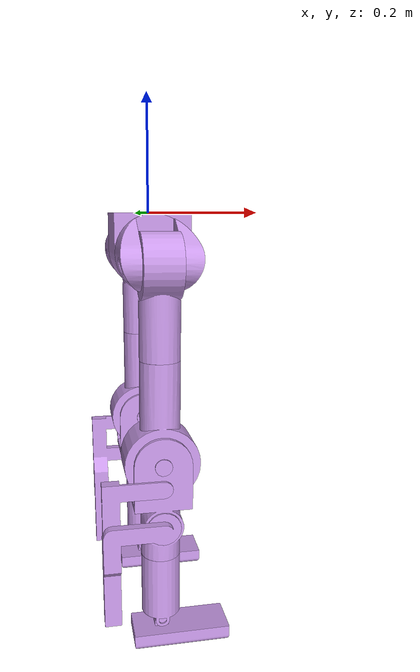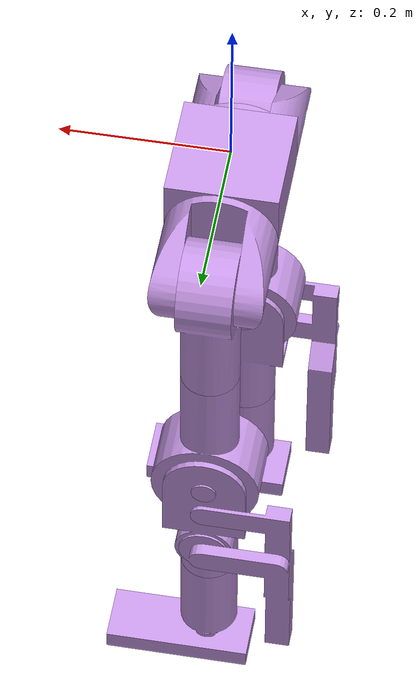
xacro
<?xml version="1.0" encoding="utf-8"?>
<robot
  name="growbot"
  xmlns:xacro="http://www.ros.org/wiki/xacro" >

<xacro:macro name="dummy_inertial">
  <inertial>
    <origin xyz="0 0 0" rpy="0 0 0"/>
    <mass value="1e-6"/>
    <inertia ixx="1e-9" ixy="0" ixz="0" iyy="1e-9" iyz="0" izz="1e-9"/>
  </inertial>
</xacro:macro>

<xacro:arg name="use_sim" default="true"/>
<xacro:arg name="ns" default=""/>
<xacro:property name="use_sim" value="$(arg use_sim)"/>
<xacro:property name="ns" value="$(arg ns)"/>

<!-- Shared joint interface list and ros2_control-->
<xacro:macro name="growbot_joint_interfaces">

  <joint name="HPR">
    <param name="motor_id">1</param>
    <command_interface name="position"/>
    <state_interface name="position"/>
    <state_interface name="velocity"/>
  </joint>
  <joint name="UTR">
    <param name="motor_id">2</param>
    <command_interface name="position"/>
    <state_interface name="position"/>
    <state_interface name="velocity"/>
  </joint>
  <joint name="LTR">
    <param name="motor_id">3</param>
    <command_interface name="position"/>
    <state_interface name="position"/>
    <state_interface name="velocity"/>
  </joint>
  <joint name="FR">
    <param name="motor_id">4</param>
    <command_interface name="position"/>
    <state_interface name="position"/>
    <state_interface name="velocity"/>
  </joint>
  <!-- Left leg -->
  <joint name="HPL">
    <param name="motor_id">5</param>
    <command_interface name="position"/>
    <state_interface name="position"/>
    <state_interface name="velocity"/>
  </joint>
  <joint name="UTL">
    <param name="motor_id">6</param>
    <command_interface name="position"/>
    <state_interface name="position"/>
    <state_interface name="velocity"/>
  </joint>
  <joint name="LTL">
    <param name="motor_id">7</param>
    <command_interface name="position"/>
    <state_interface name="position"/>
    <state_interface name="velocity"/>
  </joint>
  <joint name="FL">
    <param name="motor_id">8</param>
    <command_interface name="position"/>
    <state_interface name="position"/>
    <state_interface name="velocity"/>
  </joint>

  <!-- labeled passive for robstride as these are pololu-->
  <joint name="UBR"><param name="passive">true</param></joint>
  <joint name="LBR"><param name="passive">true</param></joint>
  <joint name="UBL"><param name="passive">true</param></joint>
  <joint name="LBL"><param name="passive">true</param></joint>
</xacro:macro>

<xacro:if value="${use_sim}">
  <gazebo>
    <plugin filename="gz_ros2_control-system"
            name="gz_ros2_control::GazeboSimROS2ControlPlugin">
      <parameters>$(find growbot_base)/config/controller.yaml</parameters>
      <xacro:if value="${ns != ''}">
        <ros>
          <namespace>${ns}</namespace>
        </ros>
      </xacro:if>
    </plugin>
  </gazebo>

  <ros2_control name="GazeboSimSystem" type="system">
    <hardware>
      <plugin>gz_ros2_control/GazeboSimSystem</plugin>
    </hardware>
    <xacro:growbot_joint_interfaces/>
  </ros2_control>
</xacro:if>

<!-- hardware stuff-->
<xacro:unless value="${use_sim}">
  <ros2_control name="RobStrideSystem" type="system">
    <hardware>
      <plugin>growbot_hardware/RobStrideSystem</plugin>
      <param name="can_interface">can0</param>
    </hardware>
    <xacro:growbot_joint_interfaces/>
  </ros2_control>
</xacro:unless>

  <link
    name="Hip_base">
    <inertial>
      <origin
        xyz="1.38777878078145E-17 0 -0.0608999220171339"
        rpy="0 0 0" />
      <mass
        value="2.16985301872214" />
      <inertia
        ixx="0.00584785662925047"
        ixy="-2.35645275808477E-19"
        ixz="-3.18044375661961E-19"
        iyy="0.00611255358513236"
        iyz="-2.57293776215433E-19"
        izz="0.00582916453397125" />
    </inertial>
    <visual>
      <origin
        xyz="0 0 0"
        rpy="0 0 0" />
      <geometry>
        <mesh
          filename="model://growbot_base/meshes/Hip_base.STL" />
      </geometry>
      <material
        name="">
        <color
          rgba="0.772549019607843 0.588235294117647 0.894117647058823 1" />
      </material>
    </visual>
    <collision>
      <origin
        xyz="0 0 0"
        rpy="0 0 0" />
      <geometry>
        <mesh
          filename="model://growbot_base/meshes/Hip_base.STL" />
      </geometry>
    </collision>
  </link>
  <!--dummy base link DO NOT REMOVE UYKWYD!-->
  <link name="base_link">
    <xacro:dummy_inertial/>
  </link>
  <joint
    name="base_joint"
    type="fixed">
    <parent link="base_link"/>
    <child link="Hip_base"/>
    <!--mess with blw if you want to move base location-->
    <origin
      xyz="0 0 0"
      rpy="0 0 0"/>
  </joint>

  <!--footprint for use in stuff like nav2 convience-->
  <link name="base_footprint">
    <xacro:dummy_inertial/>
  </link>
  <joint
    name="footprint_robot" type="fixed">
    <parent link="Hip_base"/>
    <child link="base_footprint"/>
  </joint>

  <link
    name="Hip_Pitch_L">
    <inertial>
      <origin
        xyz="-1.0563577401701E-07 0.0216931911827515 -0.00241845976396458"
        rpy="0 0 0" />
      <mass
        value="0.32535602722819" />
      <inertia
        ixx="0.000594281721656322"
        ixy="4.33002987041711E-09"
        ixz="1.15119565169926E-09"
        iyy="0.000785087098155215"
        iyz="4.04257713811968E-05"
        izz="0.000928754332776135" />
    </inertial>
    <visual>
      <origin
        xyz="0 0 0"
        rpy="0 0 0" />
      <geometry>
        <mesh
          filename="model://growbot_base/meshes/Hip_Pitch_L.STL" />
      </geometry>
      <material
        name="">
        <color
          rgba="0.772549019607843 0.588235294117647 0.894117647058823 1" />
      </material>
    </visual>
    <collision>
      <origin
        xyz="0 0 0"
        rpy="0 0 0" />
      <geometry>
        <mesh
          filename="model://growbot_base/meshes/Hip_Pitch_L.STL" />
      </geometry>
    </collision>
  </link>
  <joint
    name="HPL"
    type="revolute">
    <origin
      xyz="0 0.07625 -0.0675"
      rpy="0 0 0" />
    <parent
      link="Hip_base" />
    <child
      link="Hip_Pitch_L" />
    <axis
      xyz="0 1 0" />
    <limit
      lower="-1.57"
      upper="1.57"
      effort="120"
      velocity="4" />
  </joint>
  <link
    name="UpperLeg_Top_L">
    <inertial>
      <origin
        xyz="-0.0525 2.66134278503749E-09 -0.0309840614697206"
        rpy="0 0 0" />
      <mass
        value="1.40303873996329" />
      <inertia
        ixx="0.00499778747880465"
        ixy="8.95796534639693E-10"
        ixz="2.64773100463626E-20"
        iyy="0.0046917975627395"
        iyz="4.62982209728921E-10"
        izz="0.00144288406396799" />
    </inertial>
    <visual>
      <origin
        xyz="0 0 0"
        rpy="0 0 0" />
      <geometry>
        <mesh
          filename="model://growbot_base/meshes/UpperLeg_Top_L.STL" />
      </geometry>
      <material
        name="">
        <color
          rgba="0.772549019607843 0.588235294117647 0.894117647058823 1" />
      </material>
    </visual>
    <collision>
      <origin
        xyz="0 0 0"
        rpy="0 0 0" />
      <geometry>
        <mesh
          filename="model://growbot_base/meshes/UpperLeg_Top_L.STL" />
      </geometry>
    </collision>
  </link>
  <joint
    name="UTL"
    type="revolute">
    <origin
      xyz="0.0525 0.0570760185919361 -0.0163013162520939"
      rpy="0 0 0" />
    <parent
      link="Hip_Pitch_L" />
    <child
      link="UpperLeg_Top_L" />
    <axis
      xyz="-1 0 0" />
    <limit
      lower="-1.57"
      upper="0.4"
      effort="60"
      velocity="4" />
  </joint>
  <link
    name="UpperLeg_Bottom_L">
    <inertial>
      <origin
        xyz="2.83536091549852E-08 1.2057134679555E-08 -0.209677014672553"
        rpy="0 0 0" />
      <mass
        value="1.98499353977905" />
      <inertia
        ixx="0.0126480228919219"
        ixy="2.07602217853427E-09"
        ixz="-2.17114898302252E-09"
        iyy="0.0134297424365327"
        iyz="-1.24230068195983E-09"
        izz="0.00223915994987981" />
    </inertial>
    <visual>
      <origin
        xyz="0 0 0"
        rpy="0 0 0" />
      <geometry>
        <mesh
          filename="model://growbot_base/meshes/UpperLeg_Bottom_L.STL" />
      </geometry>
      <material
        name="">
        <color
          rgba="0.772549019607843 0.588235294117647 0.894117647058823 1" />
      </material>
    </visual>
    <collision>
      <origin
        xyz="0 0 0"
        rpy="0 0 0" />
      <geometry>
        <mesh
          filename="model://growbot_base/meshes/UpperLeg_Bottom_L.STL" />
      </geometry>
    </collision>
  </link>
  <joint
    name="UBL"
    type="prismatic">
    <origin
      xyz="-0.0525 0 -0.07"
      rpy="0 0 0" />
    <parent
      link="UpperLeg_Top_L" />
    <child
      link="UpperLeg_Bottom_L" />
    <axis
      xyz="0 0 1" />
    <limit
      lower="-0.085"
      upper="0"
      effort="120"
      velocity="2" />
  </joint>
  <link
    name="LowerLeg_Top_L">
    <inertial>
      <origin
        xyz="-1.81442389377007E-07 -0.0449958888579158 -0.0881149504565347"
        rpy="0 0 0" />
      <mass
        value="0.719066454277415" />
      <inertia
        ixx="0.00286349087520249"
        ixy="8.57372292351143E-09"
        ixz="-7.28871991087424E-09"
        iyy="0.00274910774517955"
        iyz="3.6977839726651E-06"
        izz="0.000937716075323998" />
    </inertial>
    <visual>
      <origin
        xyz="0 0 0"
        rpy="0 0 0" />
      <geometry>
        <mesh
          filename="model://growbot_base/meshes/LowerLeg_Top_L.STL" />
      </geometry>
      <material
        name="">
        <color
          rgba="0.772549019607843 0.588235294117647 0.894117647058823 1" />
      </material>
    </visual>
    <collision>
      <origin
        xyz="0 0 0"
        rpy="0 0 0" />
      <geometry>
        <mesh
          filename="model://growbot_base/meshes/LowerLeg_Top_L.STL" />
      </geometry>
    </collision>
  </link>
  <joint
    name="LTL"
    type="revolute">
    <origin
      xyz="0 0.045 -0.26"
      rpy="0 0 0" />
    <parent
      link="UpperLeg_Bottom_L" />
    <child
      link="LowerLeg_Top_L" />
    <axis
      xyz="0 -1 0" />
    <limit
      lower="-1.57"
      upper="0"
      effort="120"
      velocity="4" />
  </joint>
  <link
    name="Fourbar_L">
    <inertial>
      <origin
        xyz="-0.069360430268336 -0.0133378957329969 -0.0338766338689787"
        rpy="0 0 0" />
      <mass
        value="0.744008715873282" />
      <inertia
        ixx="0.00359937747479461"
        ixy="-0.00013879125898873"
        ixz="-0.000799710952795588"
        iyy="0.00465109326901828"
        iyz="-0.000453354697138623"
        izz="0.00134008808450958" />
    </inertial>
    <visual>
      <origin
        xyz="0 0 0"
        rpy="0 0 0" />
      <geometry>
        <mesh
          filename="model://growbot_base/meshes/Fourbar_L.STL" />
      </geometry>
      <material
        name="">
        <color
          rgba="0.772549019607843 0.588235294117647 0.894117647058823 1" />
      </material>
    </visual>
    <collision>
      <origin
        xyz="0 0 0"
        rpy="0 0 0" />
      <geometry>
        <mesh
          filename="model://growbot_base/meshes/Fourbar_L.STL" />
      </geometry>
    </collision>
  </link>
  <joint
    name="FbL"
    type="fixed">
    <origin
      xyz="0.0062769136818067 0.0005 -0.113"
      rpy="0 0 0" />
    <parent
      link="LowerLeg_Top_L" />
    <child
      link="Fourbar_L" />
    <axis
      xyz="0 0 0" />
  </joint>
  <link
    name="LowerLeg_Bottom_L">
    <inertial>
      <origin
        xyz="0 0 -0.124618842451205"
        rpy="0 0 0" />
      <mass
        value="0.307612145233778" />
      <inertia
        ixx="0.00090072644484076"
        ixy="3.41212002678124E-22"
        ixz="3.15021938345415E-20"
        iyy="0.000899554746223108"
        iyz="1.1884173119214E-21"
        izz="0.000162689372858535" />
    </inertial>
    <visual>
      <origin
        xyz="0 0 0"
        rpy="0 0 0" />
      <geometry>
        <mesh
          filename="model://growbot_base/meshes/LowerLeg_Bottom_L.STL" />
      </geometry>
      <material
        name="">
        <color
          rgba="0.772549019607843 0.588235294117647 0.894117647058823 1" />
      </material>
    </visual>
    <collision>
      <origin
        xyz="0 0 0"
        rpy="0 0 0" />
      <geometry>
        <mesh
          filename="model://growbot_base/meshes/LowerLeg_Bottom_L.STL" />
      </geometry>
    </collision>
  </link>
  <joint
    name="LBL"
    type="prismatic">
    <origin
      xyz="0 -0.045 -0.0955"
      rpy="0 0 0" />
    <parent
      link="LowerLeg_Top_L" />
    <child
      link="LowerLeg_Bottom_L" />
    <axis
      xyz="0 0 1" />
    <limit
      lower="-0.085"
      upper="0"
      effort="120"
      velocity="2" />
  </joint>
  <link
    name="Feet_L">
    <inertial>
      <origin
        xyz="0.0332952666356012 -0.02 -0.0326573535663368"
        rpy="0 0 0" />
      <mass
        value="0.19986246220588" />
      <inertia
        ixx="9.87617063323067E-05"
        ixy="-1.22084292013499E-09"
        ixz="9.85803273885539E-06"
        iyy="0.000513345996215315"
        iyz="-1.08319964936551E-19"
        izz="0.000566177747085522" />
    </inertial>
    <visual>
      <origin
        xyz="0 0 0"
        rpy="0 0 0" />
      <geometry>
        <mesh
          filename="model://growbot_base/meshes/Feet_L.STL" />
      </geometry>
      <material
        name="">
        <color
          rgba="0.772549019607843 0.588235294117647 0.894117647058823 1" />
      </material>
    </visual>
    <collision>
      <origin
        xyz="0 0 0"
        rpy="0 0 0" />
      <geometry>
        <mesh
          filename="model://growbot_base/meshes/Feet_L.STL" />
      </geometry>
    </collision>
  </link>
  <joint
    name="FL"
    type="revolute">
    <origin
      xyz="0 0.02 -0.2125"
      rpy="0 0 0" />
    <parent
      link="LowerLeg_Bottom_L" />
    <child
      link="Feet_L" />
    <axis
      xyz="0 -1 0" />
    <limit
      lower="-0.4"
      upper="0.4"
      effort="17"
      velocity="2" />
  </joint>
  <link
    name="Hip_Pitch_R">
    <inertial>
      <origin
        xyz="-1.11548962332952E-05 -0.0216931946701764 -0.00241844109990508"
        rpy="0 0 0" />
      <mass
        value="0.325356061761199" />
      <inertia
        ixx="0.000594289138978408"
        ixy="-1.8378200133792E-07"
        ixz="1.55464749499309E-06"
        iyy="0.000785087178928382"
        iyz="-4.04253816553895E-05"
        izz="0.000928747380498247" />
    </inertial>
    <visual>
      <origin
        xyz="0 0 0"
        rpy="0 0 0" />
      <geometry>
        <mesh
          filename="model://growbot_base/meshes/Hip_Pitch_R.STL" />
      </geometry>
      <material
        name="">
        <color
          rgba="0.772549019607843 0.588235294117647 0.894117647058823 1" />
      </material>
    </visual>
    <collision>
      <origin
        xyz="0 0 0"
        rpy="0 0 0" />
      <geometry>
        <mesh
          filename="model://growbot_base/meshes/Hip_Pitch_R.STL" />
      </geometry>
    </collision>
  </link>
  <joint
    name="HPR"
    type="revolute">
    <origin
      xyz="0 -0.07625 -0.0675"
      rpy="0 0 0" />
    <parent
      link="Hip_base" />
    <child
      link="Hip_Pitch_R" />
    <axis
      xyz="0 -1 0" />
    <limit
      lower="-1.57"
      upper="1.57"
      effort="120"
      velocity="4" />
  </joint>
  <link
    name="UpperLeg_Top_R">
    <inertial>
      <origin
        xyz="-0.0526435588731193 2.81388010114902E-09 -0.0307395179444002"
        rpy="0 0 0" />
      <mass
        value="1.4030387399691" />
      <inertia
        ixx="0.00499771055849278"
        ixy="9.08794094317701E-10"
        ixz="-1.65359274409475E-05"
        iyy="0.00469179756214755"
        iyz="4.78239382095678E-10"
        izz="0.00144296098359919" />
    </inertial>
    <visual>
      <origin
        xyz="0 0 0"
        rpy="0 0 0" />
      <geometry>
        <mesh
          filename="model://growbot_base/meshes/UpperLeg_Top_R.STL" />
      </geometry>
      <material
        name="">
        <color
          rgba="0.772549019607843 0.588235294117647 0.894117647058823 1" />
      </material>
    </visual>
    <collision>
      <origin
        xyz="0 0 0"
        rpy="0 0 0" />
      <geometry>
        <mesh
          filename="model://growbot_base/meshes/UpperLeg_Top_R.STL" />
      </geometry>
    </collision>
  </link>
  <joint
    name="UTR"
    type="revolute">
    <origin
      xyz="0.0524236050313718 -0.0570760185919361 -0.0165453482001895"
      rpy="0 0 0" />
    <parent
      link="Hip_Pitch_R" />
    <child
      link="UpperLeg_Top_R" />
    <axis
      xyz="-0.999989181311603 0 0.00465158679917547" />
    <limit
      lower="-0.4"
      upper="1.57"
      effort="60"
      velocity="4" />
  </joint>
  <link
    name="UpperLeg_Bottom_R">
    <inertial>
      <origin
        xyz="-0.000975304415357731 1.12220205350511E-08 -0.209674746330614"
        rpy="0 0 0" />
      <mass
        value="1.98499354243987" />
      <inertia
        ixx="0.0126477976360464"
        ixy="2.09090443798804E-09"
        ixz="-4.84190466806335E-05"
        iyy="0.0134297424693075"
        iyz="-1.19394871552355E-09"
        izz="0.00223938518945266" />
    </inertial>
    <visual>
      <origin
        xyz="0 0 0"
        rpy="0 0 0" />
      <geometry>
        <mesh
          filename="model://growbot_base/meshes/UpperLeg_Bottom_R.STL" />
      </geometry>
      <material
        name="">
        <color
          rgba="0.772549019607843 0.588235294117647 0.894117647058823 1" />
      </material>
    </visual>
    <collision>
      <origin
        xyz="0 0 0"
        rpy="0 0 0" />
      <geometry>
        <mesh
          filename="model://growbot_base/meshes/UpperLeg_Bottom_R.STL" />
      </geometry>
    </collision>
  </link>
  <joint
    name="UBR"
    type="prismatic">
    <origin
      xyz="-0.052825 0 -0.06981"
      rpy="0 0 0" />
    <parent
      link="UpperLeg_Top_R" />
    <child
      link="UpperLeg_Bottom_R" />
    <axis
      xyz="0.0046516 0 0.99999" />
    <limit
      lower="-0.085"
      upper="0"
      effort="120"
      velocity="2" />
  </joint>
  <link
    name="LowerLeg_Top_R">
    <inertial>
      <origin
        xyz="1.81442389363129E-07 0.0449958888579158 -0.0881149504565346"
        rpy="0 0 0" />
      <mass
        value="0.719066454277415" />
      <inertia
        ixx="0.00286349087520249"
        ixy="8.57372292336113E-09"
        ixz="7.28871991081678E-09"
        iyy="0.00274910774517955"
        iyz="-3.69778397266554E-06"
        izz="0.000937716075323998" />
    </inertial>
    <visual>
      <origin
        xyz="0 0 0"
        rpy="0 0 0" />
      <geometry>
        <mesh
          filename="model://growbot_base/meshes/LowerLeg_Top_R.STL" />
      </geometry>
      <material
        name="">
        <color
          rgba="0.772549019607843 0.588235294117647 0.894117647058823 1" />
      </material>
    </visual>
    <collision>
      <origin
        xyz="0 0 0"
        rpy="0 0 0" />
      <geometry>
        <mesh
          filename="model://growbot_base/meshes/LowerLeg_Top_R.STL" />
      </geometry>
    </collision>
  </link>
  <joint
    name="LTR"
    type="revolute">
    <origin
      xyz="-0.0012094125677856 -0.045 -0.259997187141017"
      rpy="0 0 0" />
    <parent
      link="UpperLeg_Bottom_R" />
    <child
      link="LowerLeg_Top_R" />
    <axis
      xyz="0 -1 0" />
    <limit
      lower="-1.57"
      upper="0"
      effort="120"
      velocity="4" />
  </joint>
  <link
    name="Fourbar_R">
    <inertial>
      <origin
        xyz="-0.0693604302683361 0.0133378957329969 -0.0338766338689787"
        rpy="0 0 0" />
      <mass
        value="0.744008715873282" />
      <inertia
        ixx="0.00359937747479461"
        ixy="0.00013879125898873"
        ixz="-0.000799710952795588"
        iyy="0.00465109326901829"
        iyz="0.000453354697138624"
        izz="0.00134008808450958" />
    </inertial>
    <visual>
      <origin
        xyz="0 0 0"
        rpy="0 0 0" />
      <geometry>
        <mesh
          filename="model://growbot_base/meshes/Fourbar_R.STL" />
      </geometry>
      <material
        name="">
        <color
          rgba="0.772549019607843 0.588235294117647 0.894117647058823 1" />
      </material>
    </visual>
    <collision>
      <origin
        xyz="0 0 0"
        rpy="0 0 0" />
      <geometry>
        <mesh
          filename="model://growbot_base/meshes/Fourbar_R.STL" />
      </geometry>
    </collision>
  </link>
  <joint
    name="FBR"
    type="fixed">
    <origin
      xyz="0.00627691368180673 -0.000500000000000028 -0.113"
      rpy="0 0 0" />
    <parent
      link="LowerLeg_Top_R" />
    <child
      link="Fourbar_R" />
    <axis
      xyz="0 0 0" />
  </joint>
  <link
    name="LowerLeg_Bottom_R">
    <inertial>
      <origin
        xyz="0 1.38777878078145E-17 -0.124618842451205"
        rpy="0 0 0" />
      <mass
        value="0.307612145233778" />
      <inertia
        ixx="0.000900726444840759"
        ixy="3.05669085732486E-22"
        ixz="2.91268507661966E-20"
        iyy="0.000899554746223108"
        iyz="-1.29925563291623E-20"
        izz="0.000162689372858535" />
    </inertial>
    <visual>
      <origin
        xyz="0 0 0"
        rpy="0 0 0" />
      <geometry>
        <mesh
          filename="model://growbot_base/meshes/LowerLeg_Bottom_R.STL" />
      </geometry>
      <material
        name="">
        <color
          rgba="0.772549019607843 0.588235294117647 0.894117647058823 1" />
      </material>
    </visual>
    <collision>
      <origin
        xyz="0 0 0"
        rpy="0 0 0" />
      <geometry>
        <mesh
          filename="model://growbot_base/meshes/LowerLeg_Bottom_R.STL" />
      </geometry>
    </collision>
  </link>
  <joint
    name="LBR"
    type="prismatic">
    <origin
      xyz="0 0.045 -0.095501"
      rpy="0 0 0" />
    <parent
      link="LowerLeg_Top_R" />
    <child
      link="LowerLeg_Bottom_R" />
    <axis
      xyz="0 0 1" />
    <limit
      lower="-0.085"
      upper="0"
      effort="120"
      velocity="2" />
  </joint>
  <link
    name="Feet_R">
    <inertial>
      <origin
        xyz="0.0332952666356011 0.0200000000000001 -0.0326573535663368"
        rpy="0 0 0" />
      <mass
        value="0.199862462205881" />
      <inertia
        ixx="9.87617063323069E-05"
        ixy="-1.22084292015837E-09"
        ixz="9.85803273885524E-06"
        iyy="0.000513345996215317"
        iyz="7.57427686054585E-20"
        izz="0.000566177747085524" />
    </inertial>
    <visual>
      <origin
        xyz="0 0 0"
        rpy="0 0 0" />
      <geometry>
        <mesh
          filename="model://growbot_base/meshes/Feet_R.STL" />
      </geometry>
      <material
        name="">
        <color
          rgba="0.772549019607843 0.588235294117647 0.894117647058823 1" />
      </material>
    </visual>
    <collision>
      <origin
        xyz="0 0 0"
        rpy="0 0 0" />
      <geometry>
        <mesh
          filename="model://growbot_base/meshes/Feet_R.STL" />
      </geometry>
    </collision>
  </link>
  <joint
    name="FR"
    type="revolute">
    <origin
      xyz="0 -0.02 -0.2125"
      rpy="0 0 0" />
    <parent
      link="LowerLeg_Bottom_R" />
    <child
      link="Feet_R" />
    <axis
      xyz="0 1 0" />
    <limit
      lower="-0.4"
      upper="0.4"
      effort="17"
      velocity="2" />
  </joint>

  <!-- Gazebo material / friction tuning                             -->

  <!-- Foot contact: high mu so the biped doesn't slide on ground.
       ODE params tuned for a soft-ish rubber-on-ground contact. -->
  <xacro:macro name="foot_gazebo" params="link_name">
    <gazebo reference="${link_name}">
      <mu1>1.2</mu1>
      <mu2>1.2</mu2>
      <kp>1e6</kp>
      <kd>100</kd>
      <minDepth>0.001</minDepth>
      <maxVel>0.1</maxVel>
      <fdir1>1 0 0</fdir1>
      <self_collide>false</self_collide>
    </gazebo>
  </xacro:macro>

  <xacro:foot_gazebo link_name="Feet_L"/>
  <xacro:foot_gazebo link_name="Feet_R"/>

</robot>
